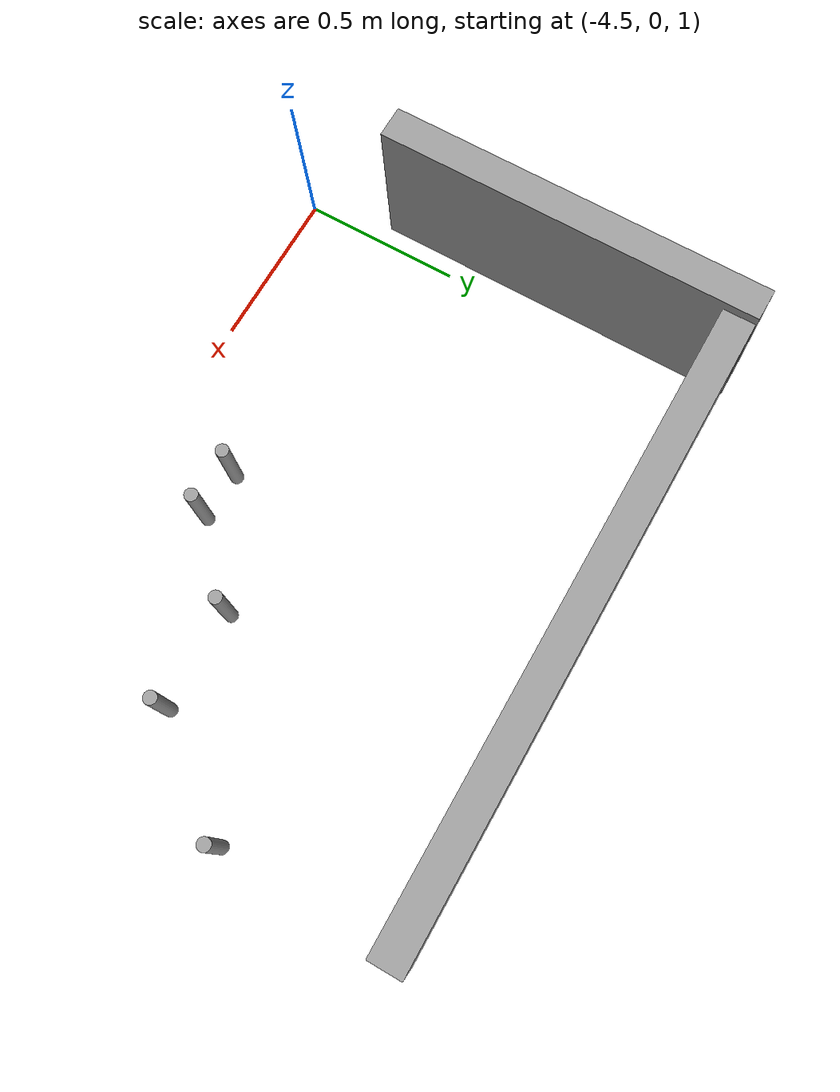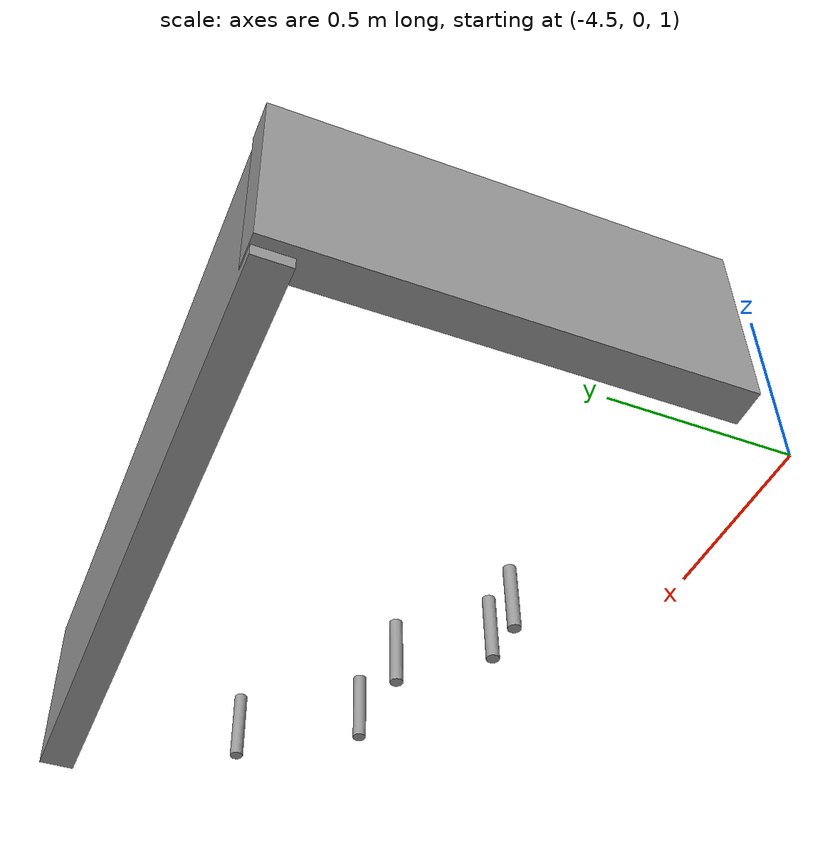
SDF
<?xml version='1.0'?>
<sdf version='1.7'>
  <model name='builder_world'>
    <link name='link_1'>
      <inertial>
        <mass>1</mass>
        <inertia>
          <ixx>0.166667</ixx>
          <ixy>0</ixy>
          <ixz>0</ixz>
          <iyy>0.166667</iyy>
          <iyz>0</iyz>
          <izz>0.166667</izz>
        </inertia>
        <pose>0 0 0 0 -0 0</pose>
      </inertial>
      <pose>-3.65962 1.3738 1.14336 0 -0 0</pose>
      <gravity>1</gravity>
      <self_collide>0</self_collide>
      <kinematic>0</kinematic>
      <enable_wind>0</enable_wind>
      <visual name='visual'>
        <pose>0 0 0 0 -0 0</pose>
        <geometry>
          <box>
            <size>2 0.1 0.5</size>
          </box>
        </geometry>
        <material>
          <lighting>1</lighting>
          <script>
            <uri>file://media/materials/scripts/gazebo.material</uri>
            <name>Gazebo/Grey</name>
          </script>
          <shader type='pixel'>
            <normal_map>__default__</normal_map>
          </shader>
          <ambient>0.3 0.3 0.3 1</ambient>
          <diffuse>0.7 0.7 0.7 1</diffuse>
          <specular>0.01 0.01 0.01 1</specular>
          <emissive>0 0 0 1</emissive>
        </material>
        <transparency>0</transparency>
        <cast_shadows>1</cast_shadows>
      </visual>
      <collision name='collision'>
        <laser_retro>0</laser_retro>
        <max_contacts>10</max_contacts>
        <pose>0 0 0 0 -0 0</pose>
        <geometry>
          <box>
            <size>2 0.1 0.2</size>
          </box>
        </geometry>
        <surface>
          <friction>
            <ode>
              <mu>1</mu>
              <mu2>1</mu2>
              <fdir1>0 0 0</fdir1>
              <slip1>0</slip1>
              <slip2>0</slip2>
            </ode>
            <torsional>
              <coefficient>1</coefficient>
              <patch_radius>0</patch_radius>
              <surface_radius>0</surface_radius>
              <use_patch_radius>1</use_patch_radius>
              <ode>
                <slip>0</slip>
              </ode>
            </torsional>
          </friction>
          <bounce>
            <restitution_coefficient>0</restitution_coefficient>
            <threshold>1e+06</threshold>
          </bounce>
          <contact>
            <collide_without_contact>0</collide_without_contact>
            <collide_without_contact_bitmask>1</collide_without_contact_bitmask>
            <collide_bitmask>1</collide_bitmask>
            <ode>
              <soft_cfm>0</soft_cfm>
              <soft_erp>0.2</soft_erp>
              <kp>1e+13</kp>
              <kd>1</kd>
              <max_vel>0.01</max_vel>
              <min_depth>0</min_depth>
            </ode>
            <bullet>
              <split_impulse>1</split_impulse>
              <split_impulse_penetration_threshold>-0.01</split_impulse_penetration_threshold>
              <soft_cfm>0</soft_cfm>
              <soft_erp>0.2</soft_erp>
              <kp>1e+13</kp>
              <kd>1</kd>
            </bullet>
          </contact>
        </surface>
      </collision>
    </link>
    <link name='link_1_clone'>
      <inertial>
        <mass>1</mass>
        <inertia>
          <ixx>0.166667</ixx>
          <ixy>0</ixy>
          <ixz>0</ixz>
          <iyy>0.166667</iyy>
          <iyz>0</iyz>
          <izz>0.166667</izz>
        </inertia>
        <pose>0 0 0 0 -0 0</pose>
      </inertial>
      <pose>-4.64199 0.826294 1.17672 0 0 -1.57618</pose>
      <gravity>1</gravity>
      <self_collide>0</self_collide>
      <kinematic>0</kinematic>
      <enable_wind>0</enable_wind>
      <visual name='visual'>
        <pose>0 0 0 0 -0 0</pose>
        <geometry>
          <box>
            <size>1.2 0.1 0.5</size>
          </box>
        </geometry>
        <material>
          <lighting>1</lighting>
          <script>
            <uri>file://media/materials/scripts/gazebo.material</uri>
            <name>Gazebo/Grey</name>
          </script>
          <shader type='pixel'>
            <normal_map>__default__</normal_map>
          </shader>
          <ambient>0.3 0.3 0.3 1</ambient>
          <diffuse>0.7 0.7 0.7 1</diffuse>
          <specular>0.01 0.01 0.01 1</specular>
          <emissive>0 0 0 1</emissive>
        </material>
        <transparency>0</transparency>
        <cast_shadows>1</cast_shadows>
      </visual>
      <collision name='collision'>
        <laser_retro>0</laser_retro>
        <max_contacts>10</max_contacts>
        <pose>0 0 0 0 -0 0</pose>
        <geometry>
          <box>
            <size>1.2 0.1 0.2</size>
          </box>
        </geometry>
        <surface>
          <friction>
            <ode>
              <mu>1</mu>
              <mu2>1</mu2>
              <fdir1>0 0 0</fdir1>
              <slip1>0</slip1>
              <slip2>0</slip2>
            </ode>
            <torsional>
              <coefficient>1</coefficient>
              <patch_radius>0</patch_radius>
              <surface_radius>0</surface_radius>
              <use_patch_radius>1</use_patch_radius>
              <ode>
                <slip>0</slip>
              </ode>
            </torsional>
          </friction>
          <bounce>
            <restitution_coefficient>0</restitution_coefficient>
            <threshold>1e+06</threshold>
          </bounce>
          <contact>
            <collide_without_contact>0</collide_without_contact>
            <collide_without_contact_bitmask>1</collide_without_contact_bitmask>
            <collide_bitmask>1</collide_bitmask>
            <ode>
              <soft_cfm>0</soft_cfm>
              <soft_erp>0.2</soft_erp>
              <kp>1e+13</kp>
              <kd>1</kd>
              <max_vel>0.01</max_vel>
              <min_depth>0</min_depth>
            </ode>
            <bullet>
              <split_impulse>1</split_impulse>
              <split_impulse_penetration_threshold>-0.01</split_impulse_penetration_threshold>
              <soft_cfm>0</soft_cfm>
              <soft_erp>0.2</soft_erp>
              <kp>1e+13</kp>
              <kd>1</kd>
            </bullet>
          </contact>
        </surface>
      </collision>
    </link>
    <link name='link_2'>
      <inertial>
        <mass>0.000358935</mass>
        <inertia>
          <ixx>1.5254e-06</ixx>
          <ixy>0</ixy>
          <ixz>0</ixz>
          <iyy>1.5254e-06</iyy>
          <iyz>0</iyz>
          <izz>7.21035e-08</izz>
        </inertia>
        <pose>0 0 0 0 -0 0</pose>
      </inertial>
      <pose>-2.68281 0.828862 1.15715 0 -0 0</pose>
      <self_collide>0</self_collide>
      <enable_wind>0</enable_wind>
      <kinematic>0</kinematic>
      <visual name='visual'>
        <pose>0 0 0 0 -0 0</pose>
        <geometry>
          <cylinder>
            <radius>0.020044</radius>
            <length>0.223142</length>
          </cylinder>
        </geometry>
        <material>
          <lighting>1</lighting>
          <script>
            <uri>file://media/materials/scripts/gazebo.material</uri>
            <name>Gazebo/Grey</name>
          </script>
          <shader type='pixel'/>
        </material>
        <transparency>0</transparency>
        <cast_shadows>1</cast_shadows>
      </visual>
      <collision name='collision'>
        <laser_retro>0</laser_retro>
        <max_contacts>10</max_contacts>
        <pose>0 0 0 0 -0 0</pose>
        <geometry>
          <cylinder>
            <radius>0.020044</radius>
            <length>0.223142</length>
          </cylinder>
        </geometry>
        <surface>
          <friction>
            <ode>
              <mu>1</mu>
              <mu2>1</mu2>
              <fdir1>0 0 0</fdir1>
              <slip1>0</slip1>
              <slip2>0</slip2>
            </ode>
            <torsional>
              <coefficient>1</coefficient>
              <patch_radius>0</patch_radius>
              <surface_radius>0</surface_radius>
              <use_patch_radius>1</use_patch_radius>
              <ode>
                <slip>0</slip>
              </ode>
            </torsional>
          </friction>
          <bounce>
            <restitution_coefficient>0</restitution_coefficient>
            <threshold>1e+06</threshold>
          </bounce>
          <contact>
            <collide_without_contact>0</collide_without_contact>
            <collide_without_contact_bitmask>1</collide_without_contact_bitmask>
            <collide_bitmask>1</collide_bitmask>
            <ode>
              <soft_cfm>0</soft_cfm>
              <soft_erp>0.2</soft_erp>
              <kp>1e+13</kp>
              <kd>1</kd>
              <max_vel>0.01</max_vel>
              <min_depth>0</min_depth>
            </ode>
            <bullet>
              <split_impulse>1</split_impulse>
              <split_impulse_penetration_threshold>-0.01</split_impulse_penetration_threshold>
              <soft_cfm>0</soft_cfm>
              <soft_erp>0.2</soft_erp>
              <kp>1e+13</kp>
              <kd>1</kd>
            </bullet>
          </contact>
        </surface>
      </collision>
    </link>
    <link name='link_2_clone'>
      <inertial>
        <mass>0.000358935</mass>
        <inertia>
          <ixx>1.5254e-06</ixx>
          <ixy>0</ixy>
          <ixz>0</ixz>
          <iyy>1.5254e-06</iyy>
          <iyz>0</iyz>
          <izz>7.21035e-08</izz>
        </inertia>
        <pose>0 0 0 0 -0 0</pose>
      </inertial>
      <pose>-3.23011 0.507495 1.15715 0 -0 0</pose>
      <self_collide>0</self_collide>
      <enable_wind>0</enable_wind>
      <kinematic>0</kinematic>
      <visual name='visual'>
        <pose>0 0 0 0 -0 0</pose>
        <geometry>
          <cylinder>
            <radius>0.020044</radius>
            <length>0.223142</length>
          </cylinder>
        </geometry>
        <material>
          <lighting>1</lighting>
          <script>
            <uri>file://media/materials/scripts/gazebo.material</uri>
            <name>Gazebo/Grey</name>
          </script>
          <shader type='pixel'/>
        </material>
        <transparency>0</transparency>
        <cast_shadows>1</cast_shadows>
      </visual>
      <collision name='collision'>
        <laser_retro>0</laser_retro>
        <max_contacts>10</max_contacts>
        <pose>0 0 0 0 -0 0</pose>
        <geometry>
          <cylinder>
            <radius>0.020044</radius>
            <length>0.223142</length>
          </cylinder>
        </geometry>
        <surface>
          <friction>
            <ode>
              <mu>1</mu>
              <mu2>1</mu2>
              <fdir1>0 0 0</fdir1>
              <slip1>0</slip1>
              <slip2>0</slip2>
            </ode>
            <torsional>
              <coefficient>1</coefficient>
              <patch_radius>0</patch_radius>
              <surface_radius>0</surface_radius>
              <use_patch_radius>1</use_patch_radius>
              <ode>
                <slip>0</slip>
              </ode>
            </torsional>
          </friction>
          <bounce>
            <restitution_coefficient>0</restitution_coefficient>
            <threshold>1e+06</threshold>
          </bounce>
          <contact>
            <collide_without_contact>0</collide_without_contact>
            <collide_without_contact_bitmask>1</collide_without_contact_bitmask>
            <collide_bitmask>1</collide_bitmask>
            <ode>
              <soft_cfm>0</soft_cfm>
              <soft_erp>0.2</soft_erp>
              <kp>1e+13</kp>
              <kd>1</kd>
              <max_vel>0.01</max_vel>
              <min_depth>0</min_depth>
            </ode>
            <bullet>
              <split_impulse>1</split_impulse>
              <split_impulse_penetration_threshold>-0.01</split_impulse_penetration_threshold>
              <soft_cfm>0</soft_cfm>
              <soft_erp>0.2</soft_erp>
              <kp>1e+13</kp>
              <kd>1</kd>
            </bullet>
          </contact>
        </surface>
      </collision>
    </link>
    <link name='link_2_clone_0'>
      <inertial>
        <mass>0.000358935</mass>
        <inertia>
          <ixx>1.5254e-06</ixx>
          <ixy>0</ixy>
          <ixz>0</ixz>
          <iyy>1.5254e-06</iyy>
          <iyz>0</iyz>
          <izz>7.21035e-08</izz>
        </inertia>
        <pose>0 0 0 0 -0 0</pose>
      </inertial>
      <pose>-2.92234 0.505967 1.15715 0 -0 0</pose>
      <self_collide>0</self_collide>
      <enable_wind>0</enable_wind>
      <kinematic>0</kinematic>
      <visual name='visual'>
        <pose>0 0 0 0 -0 0</pose>
        <geometry>
          <cylinder>
            <radius>0.020044</radius>
            <length>0.223142</length>
          </cylinder>
        </geometry>
        <material>
          <lighting>1</lighting>
          <script>
            <uri>file://media/materials/scripts/gazebo.material</uri>
            <name>Gazebo/Grey</name>
          </script>
          <shader type='pixel'/>
        </material>
        <transparency>0</transparency>
        <cast_shadows>1</cast_shadows>
      </visual>
      <collision name='collision'>
        <laser_retro>0</laser_retro>
        <max_contacts>10</max_contacts>
        <pose>0 0 0 0 -0 0</pose>
        <geometry>
          <cylinder>
            <radius>0.020044</radius>
            <length>0.223142</length>
          </cylinder>
        </geometry>
        <surface>
          <friction>
            <ode>
              <mu>1</mu>
              <mu2>1</mu2>
              <fdir1>0 0 0</fdir1>
              <slip1>0</slip1>
              <slip2>0</slip2>
            </ode>
            <torsional>
              <coefficient>1</coefficient>
              <patch_radius>0</patch_radius>
              <surface_radius>0</surface_radius>
              <use_patch_radius>1</use_patch_radius>
              <ode>
                <slip>0</slip>
              </ode>
            </torsional>
          </friction>
          <bounce>
            <restitution_coefficient>0</restitution_coefficient>
            <threshold>1e+06</threshold>
          </bounce>
          <contact>
            <collide_without_contact>0</collide_without_contact>
            <collide_without_contact_bitmask>1</collide_without_contact_bitmask>
            <collide_bitmask>1</collide_bitmask>
            <ode>
              <soft_cfm>0</soft_cfm>
              <soft_erp>0.2</soft_erp>
              <kp>1e+13</kp>
              <kd>1</kd>
              <max_vel>0.01</max_vel>
              <min_depth>0</min_depth>
            </ode>
            <bullet>
              <split_impulse>1</split_impulse>
              <split_impulse_penetration_threshold>-0.01</split_impulse_penetration_threshold>
              <soft_cfm>0</soft_cfm>
              <soft_erp>0.2</soft_erp>
              <kp>1e+13</kp>
              <kd>1</kd>
            </bullet>
          </contact>
        </surface>
      </collision>
    </link>
    <link name='link_2_clone_1'>
      <inertial>
        <mass>0.000358935</mass>
        <inertia>
          <ixx>1.5254e-06</ixx>
          <ixy>0</ixy>
          <ixz>0</ixz>
          <iyy>1.5254e-06</iyy>
          <iyz>0</iyz>
          <izz>7.21035e-08</izz>
        </inertia>
        <pose>0 0 0 0 -0 0</pose>
      </inertial>
      <pose>-3.59005 0.295868 1.15715 0 -0 0</pose>
      <self_collide>0</self_collide>
      <enable_wind>0</enable_wind>
      <kinematic>0</kinematic>
      <visual name='visual'>
        <pose>0 0 0 0 -0 0</pose>
        <geometry>
          <cylinder>
            <radius>0.020044</radius>
            <length>0.223142</length>
          </cylinder>
        </geometry>
        <material>
          <lighting>1</lighting>
          <script>
            <uri>file://media/materials/scripts/gazebo.material</uri>
            <name>Gazebo/Grey</name>
          </script>
          <shader type='pixel'/>
        </material>
        <transparency>0</transparency>
        <cast_shadows>1</cast_shadows>
      </visual>
      <collision name='collision'>
        <laser_retro>0</laser_retro>
        <max_contacts>10</max_contacts>
        <pose>0 0 0 0 -0 0</pose>
        <geometry>
          <cylinder>
            <radius>0.020044</radius>
            <length>0.223142</length>
          </cylinder>
        </geometry>
        <surface>
          <friction>
            <ode>
              <mu>1</mu>
              <mu2>1</mu2>
              <fdir1>0 0 0</fdir1>
              <slip1>0</slip1>
              <slip2>0</slip2>
            </ode>
            <torsional>
              <coefficient>1</coefficient>
              <patch_radius>0</patch_radius>
              <surface_radius>0</surface_radius>
              <use_patch_radius>1</use_patch_radius>
              <ode>
                <slip>0</slip>
              </ode>
            </torsional>
          </friction>
          <bounce>
            <restitution_coefficient>0</restitution_coefficient>
            <threshold>1e+06</threshold>
          </bounce>
          <contact>
            <collide_without_contact>0</collide_without_contact>
            <collide_without_contact_bitmask>1</collide_without_contact_bitmask>
            <collide_bitmask>1</collide_bitmask>
            <ode>
              <soft_cfm>0</soft_cfm>
              <soft_erp>0.2</soft_erp>
              <kp>1e+13</kp>
              <kd>1</kd>
              <max_vel>0.01</max_vel>
              <min_depth>0</min_depth>
            </ode>
            <bullet>
              <split_impulse>1</split_impulse>
              <split_impulse_penetration_threshold>-0.01</split_impulse_penetration_threshold>
              <soft_cfm>0</soft_cfm>
              <soft_erp>0.2</soft_erp>
              <kp>1e+13</kp>
              <kd>1</kd>
            </bullet>
          </contact>
        </surface>
      </collision>
    </link>
    <link name='link_2_clone_1_clone'>
      <inertial>
        <mass>0.000358935</mass>
        <inertia>
          <ixx>1.5254e-06</ixx>
          <ixy>0</ixy>
          <ixz>0</ixz>
          <iyy>1.5254e-06</iyy>
          <iyz>0</iyz>
          <izz>7.21035e-08</izz>
        </inertia>
        <pose>0 0 0 0 -0 0</pose>
      </inertial>
      <pose>-3.43957 0.292261 1.15715 0 -0 0</pose>
      <self_collide>0</self_collide>
      <enable_wind>0</enable_wind>
      <kinematic>0</kinematic>
      <visual name='visual'>
        <pose>0 0 0 0 -0 0</pose>
        <geometry>
          <cylinder>
            <radius>0.020044</radius>
            <length>0.223142</length>
          </cylinder>
        </geometry>
        <material>
          <lighting>1</lighting>
          <script>
            <uri>file://media/materials/scripts/gazebo.material</uri>
            <name>Gazebo/Grey</name>
          </script>
          <shader type='pixel'/>
        </material>
        <transparency>0</transparency>
        <cast_shadows>1</cast_shadows>
      </visual>
      <collision name='collision'>
        <laser_retro>0</laser_retro>
        <max_contacts>10</max_contacts>
        <pose>0 0 0 0 -0 0</pose>
        <geometry>
          <cylinder>
            <radius>0.020044</radius>
            <length>0.223142</length>
          </cylinder>
        </geometry>
        <surface>
          <friction>
            <ode>
              <mu>1</mu>
              <mu2>1</mu2>
              <fdir1>0 0 0</fdir1>
              <slip1>0</slip1>
              <slip2>0</slip2>
            </ode>
            <torsional>
              <coefficient>1</coefficient>
              <patch_radius>0</patch_radius>
              <surface_radius>0</surface_radius>
              <use_patch_radius>1</use_patch_radius>
              <ode>
                <slip>0</slip>
              </ode>
            </torsional>
          </friction>
          <bounce>
            <restitution_coefficient>0</restitution_coefficient>
            <threshold>1e+06</threshold>
          </bounce>
          <contact>
            <collide_without_contact>0</collide_without_contact>
            <collide_without_contact_bitmask>1</collide_without_contact_bitmask>
            <collide_bitmask>1</collide_bitmask>
            <ode>
              <soft_cfm>0</soft_cfm>
              <soft_erp>0.2</soft_erp>
              <kp>1e+13</kp>
              <kd>1</kd>
              <max_vel>0.01</max_vel>
              <min_depth>0</min_depth>
            </ode>
            <bullet>
              <split_impulse>1</split_impulse>
              <split_impulse_penetration_threshold>-0.01</split_impulse_penetration_threshold>
              <soft_cfm>0</soft_cfm>
              <soft_erp>0.2</soft_erp>
              <kp>1e+13</kp>
              <kd>1</kd>
            </bullet>
          </contact>
        </surface>
      </collision>
    </link>
    <static>1</static>
    <allow_auto_disable>1</allow_auto_disable>
  </model>
</sdf>
